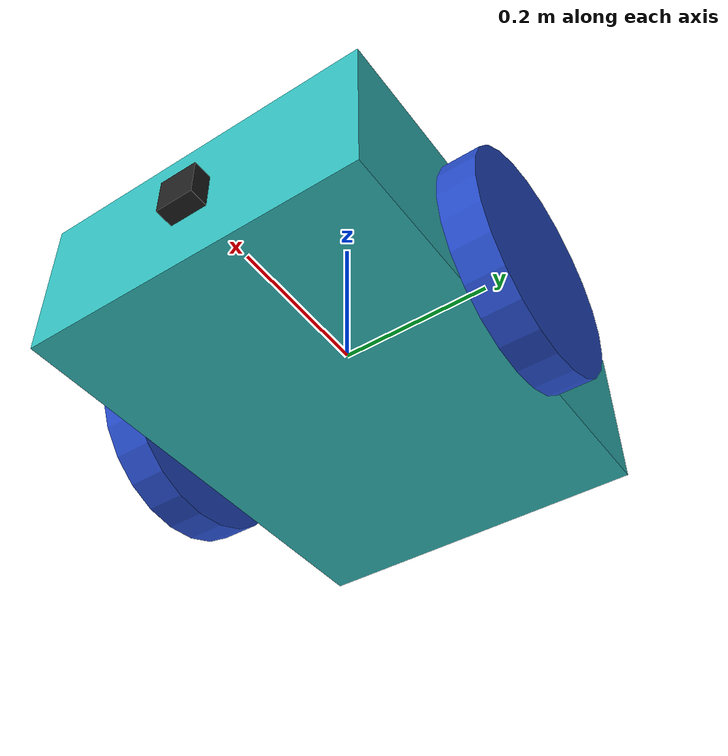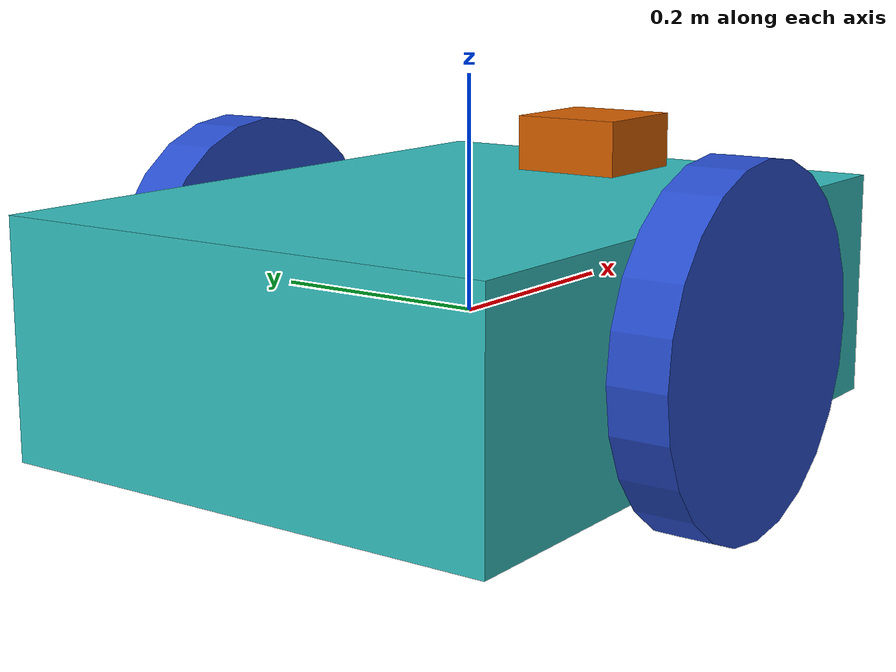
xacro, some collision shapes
<?xml version='1.0'?>

<robot name="my_robot" xmlns:xacro="http://www.ros.org/wiki/xacro">
     <xacro:include filename="$(find my_robot)/urdf/twoWheelRobot.gazebo" />
    <link name="robot_footprint"></link>

    <joint name="robot_footprint_joint" type="fixed">
        <origin xyz="0 0 0" rpy="0 0 0" />
        <parent link="robot_footprint"/>
        <child link="chassis" />
    </joint>

    <link name='chassis'>
        <pose> 0 0 0.1 0 0 0 </pose>
        <visual name="chassis_visual">
            <geometry>
                <box size='0.6 0.45 0.2' />
            </geometry>
            <origin xyz="0 0 0" rpy="0 0 0" />
        </visual>
        <collision name="chassis_collision">
            <geometry>
                <box size='0.6 0.3 0.2' />
            </geometry>
            <origin xyz="0 0 0" rpy="0 0 0" />
        </collision>
        <inertial>
            <mass value="20.0" />
            <origin xyz="0.0 0 0" rpy=" 0 0 0" />
            <inertia
                ixx="0.4041666666666673" ixy="0" ixz="0"
                iyy="0.6666666666666667" iyz="0"
                izz="0.9375"
            />
        </inertial>

        <collision name='back_caster_collision'>
            <origin xyz="-0.15 0 -0.05" rpy=" 0 0 0" />
            <geometry>
                <sphere radius="0.0499" />
            </geometry>
        </collision>

        <visual name='back_caster_visual'>
            <origin xyz="-0.15 0 -0.05" rpy=" 0 0 0" />
            <geometry>
                <sphere radius="0.05" />
            </geometry>
        </visual>

        <collision name='front_caster_collision'>
            <origin xyz="0.15 0 -0.05" rpy=" 0 0 0" />
            <geometry>
                <sphere radius="0.0499" />
            </geometry>
        </collision>

        <visual name='front_caster_visual'>
            <origin xyz="0.15 0 -0.05" rpy=" 0 0 0" />
            <geometry>
                <sphere radius="0.05" />
            </geometry>
        </visual>
    </link>

    <link name="left_wheel">
        <collision name='left_wheel_collision'>
            <origin xyz="0 0 0" rpy=" 0 1.5707 1.5707" />
            <geometry>
                <cylinder radius="0.15" length="0.05" />
            </geometry>
        </collision>
        <visual name='left_wheel_visual'>
            <origin xyz="0 0 0" rpy=" 0 1.5707 1.5707" />
            <geometry>
                <cylinder radius="0.15" length="0.05" />
            </geometry>
        </visual>
        <inertial>
            <mass value="5.0" />
            <origin xyz="0.0 0 0" rpy=" 0 1.5707 1.5707" />
            <inertia
                ixx="0.02916666666666667" ixy="0" ixz="0"
                iyy="0.02916666666666667" iyz="0"
                izz="0.056249999999999994"
            />
        </inertial>
    </link>
    <link name='right_wheel'>
        <collision name='right_wheel_collision'>
            <origin xyz="0 0 0" rpy=" 0 1.5707 1.5707" />
            <geometry>
                <cylinder radius="0.15" length="0.05" />
            </geometry>
        </collision>
        <visual name='right_wheel_visual'>
            <origin xyz="0 0 0" rpy=" 0 1.5707 1.5707" />
            <geometry>
                <cylinder radius="0.15" length="0.05" />
            </geometry>
        </visual>
        <inertial>
            <mass value="5.0" />
            <origin xyz="0.0 0 0" rpy=" 0 1.5707 1.5707" />
            <inertia
                ixx="0.02916666666666667" ixy="0" ixz="0"
                iyy="0.02916666666666667" iyz="0"
                izz="0.056249999999999994"
            />
        </inertial>
    </link>
    <joint type="continuous" name="left_wheel_hinge">
        <origin xyz="0 0.25 0" rpy="0 0 0" />
        <child link="left_wheel" />
        <parent link="chassis" />
        <axis xyz="0 1 0" rpy="0 0 0" />
        <limit effort="10000" velocity="1000" />
        <dynamics damping="1.0" friction="1.0" />
    </joint>

    <joint type="continuous" name="right_wheel_hinge">
        <origin xyz="0 -0.25 0" rpy="0 0 0" />
        <child link="right_wheel" />
        <parent link="chassis" />
        <axis xyz="0 1 0" rpy="0 0 0" />
        <limit effort="10000" velocity="1000" />
        <dynamics damping="1.0" friction="1.0" />
    </joint>

    <link name="camera">
        <collision name="camera_collision">
            <origin xyz="0 0 0" rpy=" 0 0 0" />
            <geometry>
                <box size="0.05 0.05 0.05" />
            </geometry>
        </collision>
        <visual name="camera_visual">
            <origin xyz="0 0 0" rpy=" 0 0 0" />
            <geometry>
                <box size="0.05 0.05 0.05" />
            </geometry>
        </visual>
        <inertial>
            <mass value="0.1" />
            <origin xyz="0 0 0" rpy=" 0 0 0" />
            <inertia ixx="1e-6" ixy="0" ixz="0" iyy="1e-6" iyz="0" izz="1e-6" />
        </inertial>
    </link>

    <joint type="fixed" name="camera_joint">
        <origin xyz="0.3 0 0" rpy="0 0 0" />
        <child link="camera" />
        <parent link="chassis" />
        <axis xyz="0 1 0" rpy="0 0 0" />
    </joint>

    <link name="hokuyo">
        <collision name="hokuyo_collision">
            <origin xyz="0 0 0" rpy=" 0 0 0" />
            <geometry>
                <box size="0.1 0.1 0.1" />
            </geometry>
        </collision>
        <visual name="hokuyo_visual">
            <origin xyz="0 0 0" rpy=" 0 0 0" />
            <geometry>
                <mesh filename="package://my_robot/meshes/hokuyo.dae" />
            </geometry>
        </visual>
        <inertial>
            <mass value="1e-5" />
            <origin xyz="0 0 0" rpy=" 0 0 0" />
            <inertia ixx="1e-6" ixy="0" ixz="0" iyy="1e-6" iyz="0" izz="1e-6" />
        </inertial>
    </link>

    <joint type="fixed" name="hokuyo_joint">
        <origin xyz="0.2 0 0.1" rpy="0 0 0" />
        <child link="hokuyo" />
        <parent link="chassis" />
        <axis xyz="0 1 0" rpy="0 0 0" />
    </joint>

    <gazebo reference="chassis">
        <material>Gazebo/Turquoise</material>
    </gazebo>
    <gazebo reference="left_wheel">
        <material>Gazebo/BlueGlow</material>
    </gazebo>
    <gazebo reference="right_wheel">
        <material>Gazebo/BlueGlow</material>
    </gazebo>
    <gazebo reference="camera">
        <material>Gazebo/FlatBlack</material>
    </gazebo>

</robot>
